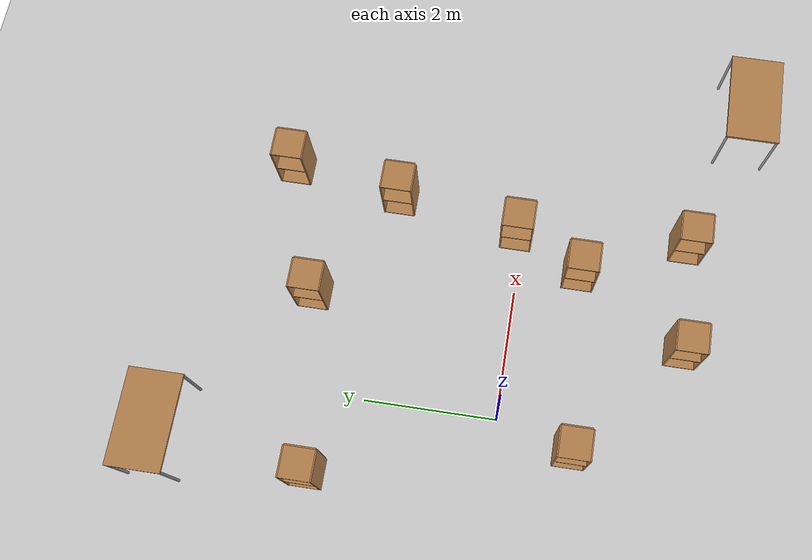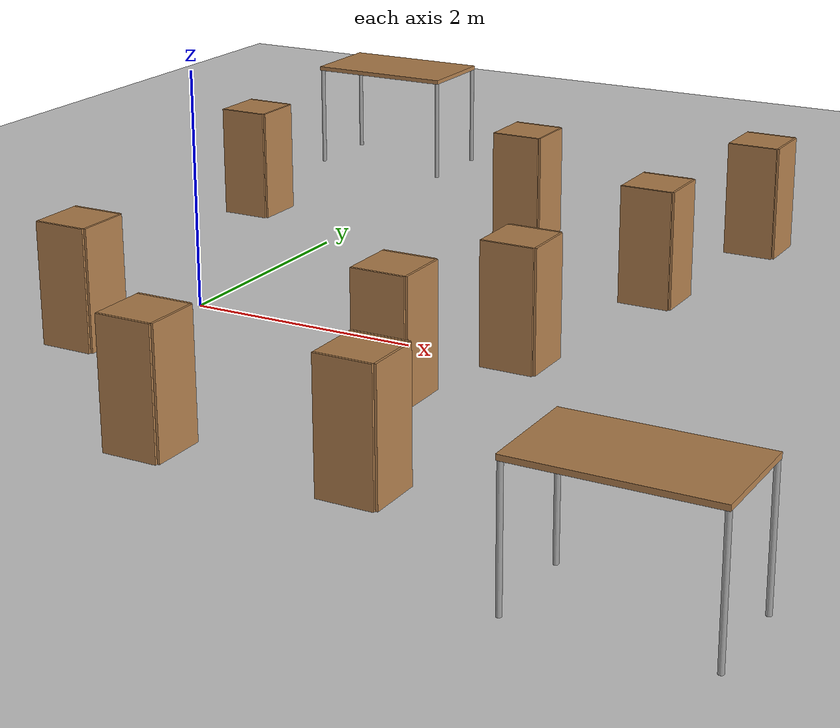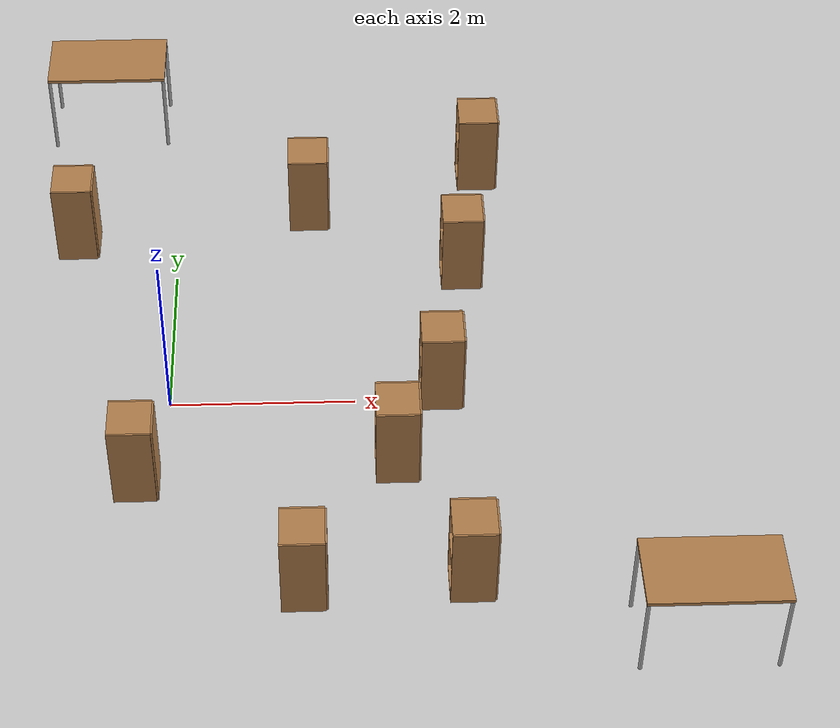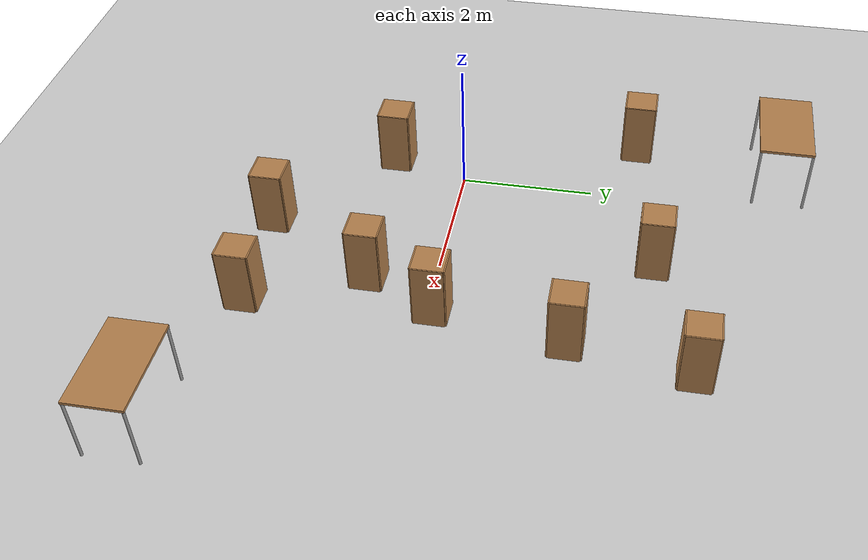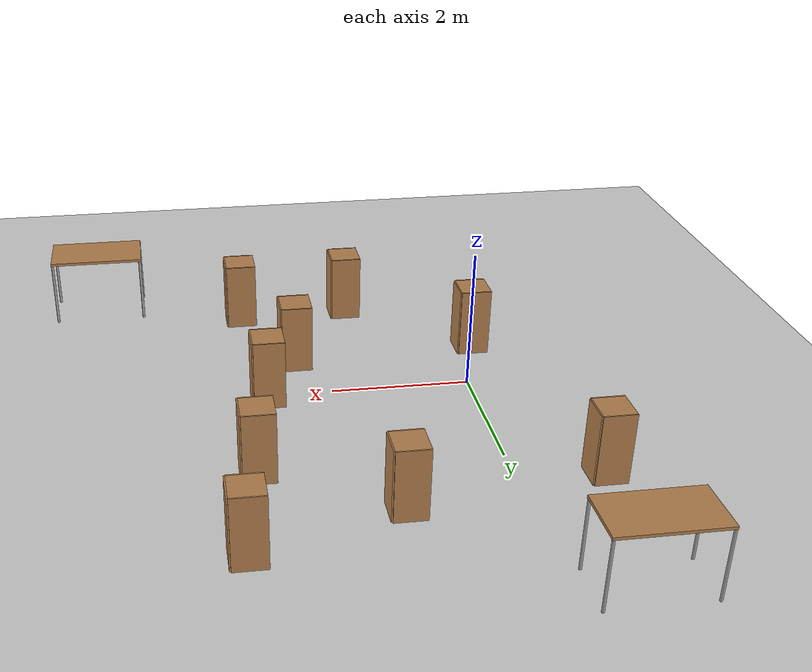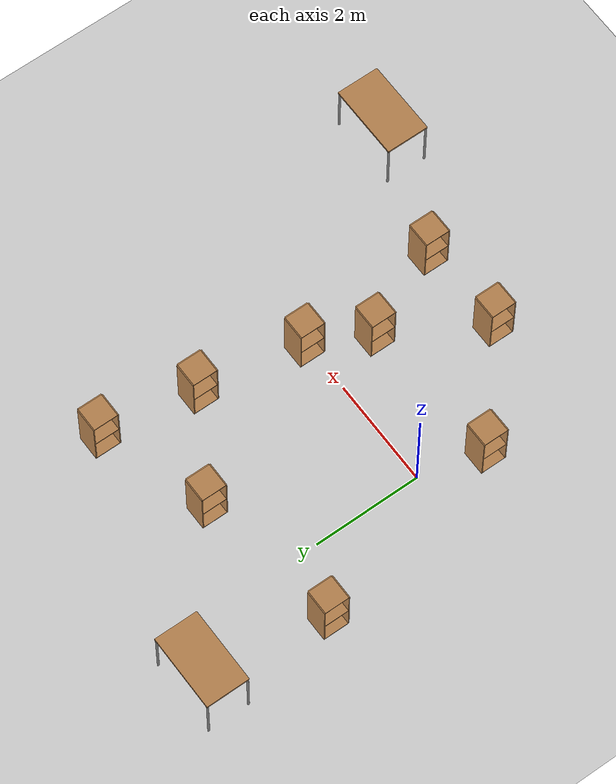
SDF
<sdf version="1.6">
 <world name="default">
  <light name="sun" type="directional">
   <pose>0 0 10 0 -0 0</pose>
   <diffuse>0.8 0.8 0.8 1</diffuse>
   <specular>0.1 0.1 0.1 1</specular>
   <attenuation>
    <range>1000</range>
    <constant>0.9</constant>
    <linear>0.01</linear>
    <quadratic>0.001</quadratic>
   </attenuation>
   <direction>-0.5 0.5 -1</direction>
  </light>
  <model name="ground_plane">
   <static>1</static>
   <link name="link">
    <collision name="collision">
     <geometry><plane><normal>0 0 1</normal><size>100 100</size></plane></geometry>
     <surface><friction><ode><mu>100</mu><mu2>50</mu2></ode></friction></surface>
    </collision>
    <visual name="visual">
     <cast_shadows>0</cast_shadows>
     <geometry><plane><normal>0 0 1</normal><size>100 100</size></plane></geometry>
     <material>
      <script><uri>file://media/materials/scripts/gazebo.material</uri><name>Gazebo/Grey</name></script>
     </material>
    </visual>
   </link>
  </model>
  <gravity>0 0 -9.8</gravity>
  <magnetic_field>6e-06 2.3e-05 -4.2e-05</magnetic_field>
  <atmosphere type="adiabatic"/>
  <physics name="default_physics" default="0" type="ode">
   <max_step_size>0.001</max_step_size>
   <real_time_factor>1</real_time_factor>
   <real_time_update_rate>1000</real_time_update_rate>
  </physics>
  <scene><ambient>0.4 0.4 0.4 1</ambient><background>0.7 0.7 0.7 1</background><shadows>1</shadows></scene>
  <spherical_coordinates>
   <surface_model>EARTH_WGS84</surface_model>
   <latitude_deg>0</latitude_deg>
   <longitude_deg>0</longitude_deg>
   <elevation>0</elevation>
   <heading_deg>0</heading_deg>
  </spherical_coordinates>
  <model name="cabinet">
   <static>1</static>
   <link name="cabinet_bottom_plate">
    <inertial>
     <pose>0 0 -1 0 -0 0</pose>
     <inertia><ixx>2.05</ixx><ixy>0</ixy><ixz>0</ixz><iyy>2.05</iyy><iyz>0</iyz><izz>2.05</izz></inertia>
     <mass>25</mass>
    </inertial>
    <collision name="cabinet_bottom_plate_geom">
     <pose>0 0 0.01 0 -0 0</pose>
     <geometry><box><size>0.45 0.45 0.02</size></box></geometry>
    </collision>
    <visual name="cabinet_bottom_plate_geom_visual">
     <pose>0 0 0.01 0 -0 0</pose>
     <geometry><box><size>0.45 0.45 0.02</size></box></geometry>
     <material>
      <script><uri>file://media/materials/scripts/gazebo.material</uri><name>Gazebo/Wood</name></script>
     </material>
    </visual>
    <collision name="cabinet_bottom_plate_geom_cabinet_back_plate">
     <pose>0.235 0 0.51 0 -0 0</pose>
     <geometry><box><size>0.02 0.45 1.02</size></box></geometry>
    </collision>
    <visual name="cabinet_bottom_plate_geom_cabinet_back_plate_visual">
     <pose>0.235 0 0.51 0 -0 0</pose>
     <geometry><box><size>0.02 0.45 1.02</size></box></geometry>
     <material>
      <script><uri>file://media/materials/scripts/gazebo.material</uri><name>Gazebo/Wood</name></script>
     </material>
    </visual>
    <collision name="cabinet_bottom_plate_geom_cabinet_left_plate">
     <pose>0 0.235 0.51 0 -0 0</pose>
     <geometry><box><size>0.45 0.02 1.02</size></box></geometry>
    </collision>
    <visual name="cabinet_bottom_plate_geom_cabinet_left_plate_visual">
     <pose>0 0.235 0.51 0 -0 0</pose>
     <geometry><box><size>0.45 0.02 1.02</size></box></geometry>
     <material>
      <script><uri>file://media/materials/scripts/gazebo.material</uri><name>Gazebo/Wood</name></script>
     </material>
    </visual>
    <collision name="cabinet_bottom_plate_geom_cabinet_middle_plate">
     <pose>0 0 0.51 0 -0 0</pose>
     <geometry><box><size>0.45 0.45 0.02</size></box></geometry>
    </collision>
    <visual name="cabinet_bottom_plate_geom_cabinet_middle_plate_visual">
     <pose>0 0 0.51 0 -0 0</pose>
     <geometry><box><size>0.45 0.45 0.02</size></box></geometry>
     <material>
      <script><uri>file://media/materials/scripts/gazebo.material</uri><name>Gazebo/Wood</name></script>
     </material>
    </visual>
    <collision name="cabinet_bottom_plate_geom_cabinet_right_plate">
     <pose>0 -0.235 0.51 0 -0 0</pose>
     <geometry><box><size>0.45 0.02 1.02</size></box></geometry>
    </collision>
    <visual name="cabinet_bottom_plate_geom_cabinet_right_plate_visual">
     <pose>0 -0.235 0.51 0 -0 0</pose>
     <geometry><box><size>0.45 0.02 1.02</size></box></geometry>
     <material>
      <script><uri>file://media/materials/scripts/gazebo.material</uri><name>Gazebo/Wood</name></script>
     </material>
    </visual>
    <collision name="cabinet_bottom_plate_geom_cabinet_top_plate">
     <pose>0 0 1.01 0 -0 0</pose>
     <geometry><box><size>0.45 0.45 0.02</size></box></geometry>
    </collision>
    <visual name="cabinet_bottom_plate_geom_cabinet_top_plate_visual">
     <pose>0 0 1.01 0 -0 0</pose>
     <geometry><box><size>0.45 0.45 0.02</size></box></geometry>
     <material>
      <script><uri>file://media/materials/scripts/gazebo.material</uri><name>Gazebo/Wood</name></script>
     </material>
    </visual>
   </link>
   <pose>2.93494 0.095994 0 0 -0 0</pose>
  </model>
  <model name="cabinet_clone">
   <static>1</static>
   <link name="cabinet_bottom_plate">
    <inertial>
     <pose>0 0 -1 0 -0 0</pose>
     <inertia><ixx>2.05</ixx><ixy>0</ixy><ixz>0</ixz><iyy>2.05</iyy><iyz>0</iyz><izz>2.05</izz></inertia>
     <mass>25</mass>
    </inertial>
    <collision name="cabinet_bottom_plate_geom">
     <pose>0 0 0.01 0 -0 0</pose>
     <geometry><box><size>0.45 0.45 0.02</size></box></geometry>
    </collision>
    <visual name="cabinet_bottom_plate_geom_visual">
     <pose>0 0 0.01 0 -0 0</pose>
     <geometry><box><size>0.45 0.45 0.02</size></box></geometry>
     <material>
      <script><uri>file://media/materials/scripts/gazebo.material</uri><name>Gazebo/Wood</name></script>
     </material>
    </visual>
    <collision name="cabinet_bottom_plate_geom_cabinet_back_plate">
     <pose>0.235 0 0.51 0 -0 0</pose>
     <geometry><box><size>0.02 0.45 1.02</size></box></geometry>
    </collision>
    <visual name="cabinet_bottom_plate_geom_cabinet_back_plate_visual">
     <pose>0.235 0 0.51 0 -0 0</pose>
     <geometry><box><size>0.02 0.45 1.02</size></box></geometry>
     <material>
      <script><uri>file://media/materials/scripts/gazebo.material</uri><name>Gazebo/Wood</name></script>
     </material>
    </visual>
    <collision name="cabinet_bottom_plate_geom_cabinet_left_plate">
     <pose>0 0.235 0.51 0 -0 0</pose>
     <geometry><box><size>0.45 0.02 1.02</size></box></geometry>
    </collision>
    <visual name="cabinet_bottom_plate_geom_cabinet_left_plate_visual">
     <pose>0 0.235 0.51 0 -0 0</pose>
     <geometry><box><size>0.45 0.02 1.02</size></box></geometry>
     <material>
      <script><uri>file://media/materials/scripts/gazebo.material</uri><name>Gazebo/Wood</name></script>
     </material>
    </visual>
    <collision name="cabinet_bottom_plate_geom_cabinet_middle_plate">
     <pose>0 0 0.51 0 -0 0</pose>
     <geometry><box><size>0.45 0.45 0.02</size></box></geometry>
    </collision>
    <visual name="cabinet_bottom_plate_geom_cabinet_middle_plate_visual">
     <pose>0 0 0.51 0 -0 0</pose>
     <geometry><box><size>0.45 0.45 0.02</size></box></geometry>
     <material>
      <script><uri>file://media/materials/scripts/gazebo.material</uri><name>Gazebo/Wood</name></script>
     </material>
    </visual>
    <collision name="cabinet_bottom_plate_geom_cabinet_right_plate">
     <pose>0 -0.235 0.51 0 -0 0</pose>
     <geometry><box><size>0.45 0.02 1.02</size></box></geometry>
    </collision>
    <visual name="cabinet_bottom_plate_geom_cabinet_right_plate_visual">
     <pose>0 -0.235 0.51 0 -0 0</pose>
     <geometry><box><size>0.45 0.02 1.02</size></box></geometry>
     <material>
      <script><uri>file://media/materials/scripts/gazebo.material</uri><name>Gazebo/Wood</name></script>
     </material>
    </visual>
    <collision name="cabinet_bottom_plate_geom_cabinet_top_plate">
     <pose>0 0 1.01 0 -0 0</pose>
     <geometry><box><size>0.45 0.45 0.02</size></box></geometry>
    </collision>
    <visual name="cabinet_bottom_plate_geom_cabinet_top_plate_visual">
     <pose>0 0 1.01 0 -0 0</pose>
     <geometry><box><size>0.45 0.45 0.02</size></box></geometry>
     <material>
      <script><uri>file://media/materials/scripts/gazebo.material</uri><name>Gazebo/Wood</name></script>
     </material>
    </visual>
   </link>
   <pose>1.52562 3.04668 0 0 -0 0</pose>
  </model>
  <model name="cabinet_clone_0">
   <static>1</static>
   <link name="cabinet_bottom_plate">
    <inertial>
     <pose>0 0 -1 0 -0 0</pose>
     <inertia><ixx>2.05</ixx><ixy>0</ixy><ixz>0</ixz><iyy>2.05</iyy><iyz>0</iyz><izz>2.05</izz></inertia>
     <mass>25</mass>
    </inertial>
    <collision name="cabinet_bottom_plate_geom">
     <pose>0 0 0.01 0 -0 0</pose>
     <geometry><box><size>0.45 0.45 0.02</size></box></geometry>
    </collision>
    <visual name="cabinet_bottom_plate_geom_visual">
     <pose>0 0 0.01 0 -0 0</pose>
     <geometry><box><size>0.45 0.45 0.02</size></box></geometry>
     <material>
      <script><uri>file://media/materials/scripts/gazebo.material</uri><name>Gazebo/Wood</name></script>
     </material>
    </visual>
    <collision name="cabinet_bottom_plate_geom_cabinet_back_plate">
     <pose>0.235 0 0.51 0 -0 0</pose>
     <geometry><box><size>0.02 0.45 1.02</size></box></geometry>
    </collision>
    <visual name="cabinet_bottom_plate_geom_cabinet_back_plate_visual">
     <pose>0.235 0 0.51 0 -0 0</pose>
     <geometry><box><size>0.02 0.45 1.02</size></box></geometry>
     <material>
      <script><uri>file://media/materials/scripts/gazebo.material</uri><name>Gazebo/Wood</name></script>
     </material>
    </visual>
    <collision name="cabinet_bottom_plate_geom_cabinet_left_plate">
     <pose>0 0.235 0.51 0 -0 0</pose>
     <geometry><box><size>0.45 0.02 1.02</size></box></geometry>
    </collision>
    <visual name="cabinet_bottom_plate_geom_cabinet_left_plate_visual">
     <pose>0 0.235 0.51 0 -0 0</pose>
     <geometry><box><size>0.45 0.02 1.02</size></box></geometry>
     <material>
      <script><uri>file://media/materials/scripts/gazebo.material</uri><name>Gazebo/Wood</name></script>
     </material>
    </visual>
    <collision name="cabinet_bottom_plate_geom_cabinet_middle_plate">
     <pose>0 0 0.51 0 -0 0</pose>
     <geometry><box><size>0.45 0.45 0.02</size></box></geometry>
    </collision>
    <visual name="cabinet_bottom_plate_geom_cabinet_middle_plate_visual">
     <pose>0 0 0.51 0 -0 0</pose>
     <geometry><box><size>0.45 0.45 0.02</size></box></geometry>
     <material>
      <script><uri>file://media/materials/scripts/gazebo.material</uri><name>Gazebo/Wood</name></script>
     </material>
    </visual>
    <collision name="cabinet_bottom_plate_geom_cabinet_right_plate">
     <pose>0 -0.235 0.51 0 -0 0</pose>
     <geometry><box><size>0.45 0.02 1.02</size></box></geometry>
    </collision>
    <visual name="cabinet_bottom_plate_geom_cabinet_right_plate_visual">
     <pose>0 -0.235 0.51 0 -0 0</pose>
     <geometry><box><size>0.45 0.02 1.02</size></box></geometry>
     <material>
      <script><uri>file://media/materials/scripts/gazebo.material</uri><name>Gazebo/Wood</name></script>
     </material>
    </visual>
    <collision name="cabinet_bottom_plate_geom_cabinet_top_plate">
     <pose>0 0 1.01 0 -0 0</pose>
     <geometry><box><size>0.45 0.45 0.02</size></box></geometry>
    </collision>
    <visual name="cabinet_bottom_plate_geom_cabinet_top_plate_visual">
     <pose>0 0 1.01 0 -0 0</pose>
     <geometry><box><size>0.45 0.45 0.02</size></box></geometry>
     <material>
      <script><uri>file://media/materials/scripts/gazebo.material</uri><name>Gazebo/Wood</name></script>
     </material>
    </visual>
   </link>
   <pose>3.25827 1.98576 0 0 -0 0</pose>
  </model>
  <model name="cabinet_clone_1">
   <static>1</static>
   <link name="cabinet_bottom_plate">
    <inertial>
     <pose>0 0 -1 0 -0 0</pose>
     <inertia><ixx>2.05</ixx><ixy>0</ixy><ixz>0</ixz><iyy>2.05</iyy><iyz>0</iyz><izz>2.05</izz></inertia>
     <mass>25</mass>
    </inertial>
    <collision name="cabinet_bottom_plate_geom">
     <pose>0 0 0.01 0 -0 0</pose>
     <geometry><box><size>0.45 0.45 0.02</size></box></geometry>
    </collision>
    <visual name="cabinet_bottom_plate_geom_visual">
     <pose>0 0 0.01 0 -0 0</pose>
     <geometry><box><size>0.45 0.45 0.02</size></box></geometry>
     <material>
      <script><uri>file://media/materials/scripts/gazebo.material</uri><name>Gazebo/Wood</name></script>
     </material>
    </visual>
    <collision name="cabinet_bottom_plate_geom_cabinet_back_plate">
     <pose>0.235 0 0.51 0 -0 0</pose>
     <geometry><box><size>0.02 0.45 1.02</size></box></geometry>
    </collision>
    <visual name="cabinet_bottom_plate_geom_cabinet_back_plate_visual">
     <pose>0.235 0 0.51 0 -0 0</pose>
     <geometry><box><size>0.02 0.45 1.02</size></box></geometry>
     <material>
      <script><uri>file://media/materials/scripts/gazebo.material</uri><name>Gazebo/Wood</name></script>
     </material>
    </visual>
    <collision name="cabinet_bottom_plate_geom_cabinet_left_plate">
     <pose>0 0.235 0.51 0 -0 0</pose>
     <geometry><box><size>0.45 0.02 1.02</size></box></geometry>
    </collision>
    <visual name="cabinet_bottom_plate_geom_cabinet_left_plate_visual">
     <pose>0 0.235 0.51 0 -0 0</pose>
     <geometry><box><size>0.45 0.02 1.02</size></box></geometry>
     <material>
      <script><uri>file://media/materials/scripts/gazebo.material</uri><name>Gazebo/Wood</name></script>
     </material>
    </visual>
    <collision name="cabinet_bottom_plate_geom_cabinet_middle_plate">
     <pose>0 0 0.51 0 -0 0</pose>
     <geometry><box><size>0.45 0.45 0.02</size></box></geometry>
    </collision>
    <visual name="cabinet_bottom_plate_geom_cabinet_middle_plate_visual">
     <pose>0 0 0.51 0 -0 0</pose>
     <geometry><box><size>0.45 0.45 0.02</size></box></geometry>
     <material>
      <script><uri>file://media/materials/scripts/gazebo.material</uri><name>Gazebo/Wood</name></script>
     </material>
    </visual>
    <collision name="cabinet_bottom_plate_geom_cabinet_right_plate">
     <pose>0 -0.235 0.51 0 -0 0</pose>
     <geometry><box><size>0.45 0.02 1.02</size></box></geometry>
    </collision>
    <visual name="cabinet_bottom_plate_geom_cabinet_right_plate_visual">
     <pose>0 -0.235 0.51 0 -0 0</pose>
     <geometry><box><size>0.45 0.02 1.02</size></box></geometry>
     <material>
      <script><uri>file://media/materials/scripts/gazebo.material</uri><name>Gazebo/Wood</name></script>
     </material>
    </visual>
    <collision name="cabinet_bottom_plate_geom_cabinet_top_plate">
     <pose>0 0 1.01 0 -0 0</pose>
     <geometry><box><size>0.45 0.45 0.02</size></box></geometry>
    </collision>
    <visual name="cabinet_bottom_plate_geom_cabinet_top_plate_visual">
     <pose>0 0 1.01 0 -0 0</pose>
     <geometry><box><size>0.45 0.45 0.02</size></box></geometry>
     <material>
      <script><uri>file://media/materials/scripts/gazebo.material</uri><name>Gazebo/Wood</name></script>
     </material>
    </visual>
   </link>
   <pose>3.53839 3.7203 0 0 -0 0</pose>
  </model>
  <model name="cabinet_clone_2">
   <static>1</static>
   <link name="cabinet_bottom_plate">
    <inertial>
     <pose>0 0 -1 0 -0 0</pose>
     <inertia><ixx>2.05</ixx><ixy>0</ixy><ixz>0</ixz><iyy>2.05</iyy><iyz>0</iyz><izz>2.05</izz></inertia>
     <mass>25</mass>
    </inertial>
    <collision name="cabinet_bottom_plate_geom">
     <pose>0 0 0.01 0 -0 0</pose>
     <geometry><box><size>0.45 0.45 0.02</size></box></geometry>
    </collision>
    <visual name="cabinet_bottom_plate_geom_visual">
     <pose>0 0 0.01 0 -0 0</pose>
     <geometry><box><size>0.45 0.45 0.02</size></box></geometry>
     <material>
      <script><uri>file://media/materials/scripts/gazebo.material</uri><name>Gazebo/Wood</name></script>
     </material>
    </visual>
    <collision name="cabinet_bottom_plate_geom_cabinet_back_plate">
     <pose>0.235 0 0.51 0 -0 0</pose>
     <geometry><box><size>0.02 0.45 1.02</size></box></geometry>
    </collision>
    <visual name="cabinet_bottom_plate_geom_cabinet_back_plate_visual">
     <pose>0.235 0 0.51 0 -0 0</pose>
     <geometry><box><size>0.02 0.45 1.02</size></box></geometry>
     <material>
      <script><uri>file://media/materials/scripts/gazebo.material</uri><name>Gazebo/Wood</name></script>
     </material>
    </visual>
    <collision name="cabinet_bottom_plate_geom_cabinet_left_plate">
     <pose>0 0.235 0.51 0 -0 0</pose>
     <geometry><box><size>0.45 0.02 1.02</size></box></geometry>
    </collision>
    <visual name="cabinet_bottom_plate_geom_cabinet_left_plate_visual">
     <pose>0 0.235 0.51 0 -0 0</pose>
     <geometry><box><size>0.45 0.02 1.02</size></box></geometry>
     <material>
      <script><uri>file://media/materials/scripts/gazebo.material</uri><name>Gazebo/Wood</name></script>
     </material>
    </visual>
    <collision name="cabinet_bottom_plate_geom_cabinet_middle_plate">
     <pose>0 0 0.51 0 -0 0</pose>
     <geometry><box><size>0.45 0.45 0.02</size></box></geometry>
    </collision>
    <visual name="cabinet_bottom_plate_geom_cabinet_middle_plate_visual">
     <pose>0 0 0.51 0 -0 0</pose>
     <geometry><box><size>0.45 0.45 0.02</size></box></geometry>
     <material>
      <script><uri>file://media/materials/scripts/gazebo.material</uri><name>Gazebo/Wood</name></script>
     </material>
    </visual>
    <collision name="cabinet_bottom_plate_geom_cabinet_right_plate">
     <pose>0 -0.235 0.51 0 -0 0</pose>
     <geometry><box><size>0.45 0.02 1.02</size></box></geometry>
    </collision>
    <visual name="cabinet_bottom_plate_geom_cabinet_right_plate_visual">
     <pose>0 -0.235 0.51 0 -0 0</pose>
     <geometry><box><size>0.45 0.02 1.02</size></box></geometry>
     <material>
      <script><uri>file://media/materials/scripts/gazebo.material</uri><name>Gazebo/Wood</name></script>
     </material>
    </visual>
    <collision name="cabinet_bottom_plate_geom_cabinet_top_plate">
     <pose>0 0 1.01 0 -0 0</pose>
     <geometry><box><size>0.45 0.45 0.02</size></box></geometry>
    </collision>
    <visual name="cabinet_bottom_plate_geom_cabinet_top_plate_visual">
     <pose>0 0 1.01 0 -0 0</pose>
     <geometry><box><size>0.45 0.45 0.02</size></box></geometry>
     <material>
      <script><uri>file://media/materials/scripts/gazebo.material</uri><name>Gazebo/Wood</name></script>
     </material>
    </visual>
   </link>
   <pose>2.42007 -0.941145 0 0 -0 0</pose>
  </model>
  <model name="cabinet_clone_3">
   <static>1</static>
   <link name="cabinet_bottom_plate">
    <inertial>
     <pose>0 0 -1 0 -0 0</pose>
     <inertia><ixx>2.05</ixx><ixy>0</ixy><ixz>0</ixz><iyy>2.05</iyy><iyz>0</iyz><izz>2.05</izz></inertia>
     <mass>25</mass>
    </inertial>
    <collision name="cabinet_bottom_plate_geom">
     <pose>0 0 0.01 0 -0 0</pose>
     <geometry><box><size>0.45 0.45 0.02</size></box></geometry>
    </collision>
    <visual name="cabinet_bottom_plate_geom_visual">
     <pose>0 0 0.01 0 -0 0</pose>
     <geometry><box><size>0.45 0.45 0.02</size></box></geometry>
     <material>
      <script><uri>file://media/materials/scripts/gazebo.material</uri><name>Gazebo/Wood</name></script>
     </material>
    </visual>
    <collision name="cabinet_bottom_plate_geom_cabinet_back_plate">
     <pose>0.235 0 0.51 0 -0 0</pose>
     <geometry><box><size>0.02 0.45 1.02</size></box></geometry>
    </collision>
    <visual name="cabinet_bottom_plate_geom_cabinet_back_plate_visual">
     <pose>0.235 0 0.51 0 -0 0</pose>
     <geometry><box><size>0.02 0.45 1.02</size></box></geometry>
     <material>
      <script><uri>file://media/materials/scripts/gazebo.material</uri><name>Gazebo/Wood</name></script>
     </material>
    </visual>
    <collision name="cabinet_bottom_plate_geom_cabinet_left_plate">
     <pose>0 0.235 0.51 0 -0 0</pose>
     <geometry><box><size>0.45 0.02 1.02</size></box></geometry>
    </collision>
    <visual name="cabinet_bottom_plate_geom_cabinet_left_plate_visual">
     <pose>0 0.235 0.51 0 -0 0</pose>
     <geometry><box><size>0.45 0.02 1.02</size></box></geometry>
     <material>
      <script><uri>file://media/materials/scripts/gazebo.material</uri><name>Gazebo/Wood</name></script>
     </material>
    </visual>
    <collision name="cabinet_bottom_plate_geom_cabinet_middle_plate">
     <pose>0 0 0.51 0 -0 0</pose>
     <geometry><box><size>0.45 0.45 0.02</size></box></geometry>
    </collision>
    <visual name="cabinet_bottom_plate_geom_cabinet_middle_plate_visual">
     <pose>0 0 0.51 0 -0 0</pose>
     <geometry><box><size>0.45 0.45 0.02</size></box></geometry>
     <material>
      <script><uri>file://media/materials/scripts/gazebo.material</uri><name>Gazebo/Wood</name></script>
     </material>
    </visual>
    <collision name="cabinet_bottom_plate_geom_cabinet_right_plate">
     <pose>0 -0.235 0.51 0 -0 0</pose>
     <geometry><box><size>0.45 0.02 1.02</size></box></geometry>
    </collision>
    <visual name="cabinet_bottom_plate_geom_cabinet_right_plate_visual">
     <pose>0 -0.235 0.51 0 -0 0</pose>
     <geometry><box><size>0.45 0.02 1.02</size></box></geometry>
     <material>
      <script><uri>file://media/materials/scripts/gazebo.material</uri><name>Gazebo/Wood</name></script>
     </material>
    </visual>
    <collision name="cabinet_bottom_plate_geom_cabinet_top_plate">
     <pose>0 0 1.01 0 -0 0</pose>
     <geometry><box><size>0.45 0.45 0.02</size></box></geometry>
    </collision>
    <visual name="cabinet_bottom_plate_geom_cabinet_top_plate_visual">
     <pose>0 0 1.01 0 -0 0</pose>
     <geometry><box><size>0.45 0.45 0.02</size></box></geometry>
     <material>
      <script><uri>file://media/materials/scripts/gazebo.material</uri><name>Gazebo/Wood</name></script>
     </material>
    </visual>
   </link>
   <pose>-1.16378 2.62513 0 0 -0 0</pose>
  </model>
  <model name="cabinet_clone_4">
   <static>1</static>
   <link name="cabinet_bottom_plate">
    <inertial>
     <pose>0 0 -1 0 -0 0</pose>
     <inertia><ixx>2.05</ixx><ixy>0</ixy><ixz>0</ixz><iyy>2.05</iyy><iyz>0</iyz><izz>2.05</izz></inertia>
     <mass>25</mass>
    </inertial>
    <collision name="cabinet_bottom_plate_geom">
     <pose>0 0 0.01 0 -0 0</pose>
     <geometry><box><size>0.45 0.45 0.02</size></box></geometry>
    </collision>
    <visual name="cabinet_bottom_plate_geom_visual">
     <pose>0 0 0.01 0 -0 0</pose>
     <geometry><box><size>0.45 0.45 0.02</size></box></geometry>
     <material>
      <script><uri>file://media/materials/scripts/gazebo.material</uri><name>Gazebo/Wood</name></script>
     </material>
    </visual>
    <collision name="cabinet_bottom_plate_geom_cabinet_back_plate">
     <pose>0.235 0 0.51 0 -0 0</pose>
     <geometry><box><size>0.02 0.45 1.02</size></box></geometry>
    </collision>
    <visual name="cabinet_bottom_plate_geom_cabinet_back_plate_visual">
     <pose>0.235 0 0.51 0 -0 0</pose>
     <geometry><box><size>0.02 0.45 1.02</size></box></geometry>
     <material>
      <script><uri>file://media/materials/scripts/gazebo.material</uri><name>Gazebo/Wood</name></script>
     </material>
    </visual>
    <collision name="cabinet_bottom_plate_geom_cabinet_left_plate">
     <pose>0 0.235 0.51 0 -0 0</pose>
     <geometry><box><size>0.45 0.02 1.02</size></box></geometry>
    </collision>
    <visual name="cabinet_bottom_plate_geom_cabinet_left_plate_visual">
     <pose>0 0.235 0.51 0 -0 0</pose>
     <geometry><box><size>0.45 0.02 1.02</size></box></geometry>
     <material>
      <script><uri>file://media/materials/scripts/gazebo.material</uri><name>Gazebo/Wood</name></script>
     </material>
    </visual>
    <collision name="cabinet_bottom_plate_geom_cabinet_middle_plate">
     <pose>0 0 0.51 0 -0 0</pose>
     <geometry><box><size>0.45 0.45 0.02</size></box></geometry>
    </collision>
    <visual name="cabinet_bottom_plate_geom_cabinet_middle_plate_visual">
     <pose>0 0 0.51 0 -0 0</pose>
     <geometry><box><size>0.45 0.45 0.02</size></box></geometry>
     <material>
      <script><uri>file://media/materials/scripts/gazebo.material</uri><name>Gazebo/Wood</name></script>
     </material>
    </visual>
    <collision name="cabinet_bottom_plate_geom_cabinet_right_plate">
     <pose>0 -0.235 0.51 0 -0 0</pose>
     <geometry><box><size>0.45 0.02 1.02</size></box></geometry>
    </collision>
    <visual name="cabinet_bottom_plate_geom_cabinet_right_plate_visual">
     <pose>0 -0.235 0.51 0 -0 0</pose>
     <geometry><box><size>0.45 0.02 1.02</size></box></geometry>
     <material>
      <script><uri>file://media/materials/scripts/gazebo.material</uri><name>Gazebo/Wood</name></script>
     </material>
    </visual>
    <collision name="cabinet_bottom_plate_geom_cabinet_top_plate">
     <pose>0 0 1.01 0 -0 0</pose>
     <geometry><box><size>0.45 0.45 0.02</size></box></geometry>
    </collision>
    <visual name="cabinet_bottom_plate_geom_cabinet_top_plate_visual">
     <pose>0 0 1.01 0 -0 0</pose>
     <geometry><box><size>0.45 0.45 0.02</size></box></geometry>
     <material>
      <script><uri>file://media/materials/scripts/gazebo.material</uri><name>Gazebo/Wood</name></script>
     </material>
    </visual>
   </link>
   <pose>-0.316055 -1.12471 0 0 -0 0</pose>
  </model>
  <model name="cabinet_clone_5">
   <static>1</static>
   <link name="cabinet_bottom_plate">
    <inertial>
     <pose>0 0 -1 0 -0 0</pose>
     <inertia><ixx>2.05</ixx><ixy>0</ixy><ixz>0</ixz><iyy>2.05</iyy><iyz>0</iyz><izz>2.05</izz></inertia>
     <mass>25</mass>
    </inertial>
    <collision name="cabinet_bottom_plate_geom">
     <pose>0 0 0.01 0 -0 0</pose>
     <geometry><box><size>0.45 0.45 0.02</size></box></geometry>
    </collision>
    <visual name="cabinet_bottom_plate_geom_visual">
     <pose>0 0 0.01 0 -0 0</pose>
     <geometry><box><size>0.45 0.45 0.02</size></box></geometry>
     <material>
      <script><uri>file://media/materials/scripts/gazebo.material</uri><name>Gazebo/Wood</name></script>
     </material>
    </visual>
    <collision name="cabinet_bottom_plate_geom_cabinet_back_plate">
     <pose>0.235 0 0.51 0 -0 0</pose>
     <geometry><box><size>0.02 0.45 1.02</size></box></geometry>
    </collision>
    <visual name="cabinet_bottom_plate_geom_cabinet_back_plate_visual">
     <pose>0.235 0 0.51 0 -0 0</pose>
     <geometry><box><size>0.02 0.45 1.02</size></box></geometry>
     <material>
      <script><uri>file://media/materials/scripts/gazebo.material</uri><name>Gazebo/Wood</name></script>
     </material>
    </visual>
    <collision name="cabinet_bottom_plate_geom_cabinet_left_plate">
     <pose>0 0.235 0.51 0 -0 0</pose>
     <geometry><box><size>0.45 0.02 1.02</size></box></geometry>
    </collision>
    <visual name="cabinet_bottom_plate_geom_cabinet_left_plate_visual">
     <pose>0 0.235 0.51 0 -0 0</pose>
     <geometry><box><size>0.45 0.02 1.02</size></box></geometry>
     <material>
      <script><uri>file://media/materials/scripts/gazebo.material</uri><name>Gazebo/Wood</name></script>
     </material>
    </visual>
    <collision name="cabinet_bottom_plate_geom_cabinet_middle_plate">
     <pose>0 0 0.51 0 -0 0</pose>
     <geometry><box><size>0.45 0.45 0.02</size></box></geometry>
    </collision>
    <visual name="cabinet_bottom_plate_geom_cabinet_middle_plate_visual">
     <pose>0 0 0.51 0 -0 0</pose>
     <geometry><box><size>0.45 0.45 0.02</size></box></geometry>
     <material>
      <script><uri>file://media/materials/scripts/gazebo.material</uri><name>Gazebo/Wood</name></script>
     </material>
    </visual>
    <collision name="cabinet_bottom_plate_geom_cabinet_right_plate">
     <pose>0 -0.235 0.51 0 -0 0</pose>
     <geometry><box><size>0.45 0.02 1.02</size></box></geometry>
    </collision>
    <visual name="cabinet_bottom_plate_geom_cabinet_right_plate_visual">
     <pose>0 -0.235 0.51 0 -0 0</pose>
     <geometry><box><size>0.45 0.02 1.02</size></box></geometry>
     <material>
      <script><uri>file://media/materials/scripts/gazebo.material</uri><name>Gazebo/Wood</name></script>
     </material>
    </visual>
    <collision name="cabinet_bottom_plate_geom_cabinet_top_plate">
     <pose>0 0 1.01 0 -0 0</pose>
     <geometry><box><size>0.45 0.45 0.02</size></box></geometry>
    </collision>
    <visual name="cabinet_bottom_plate_geom_cabinet_top_plate_visual">
     <pose>0 0 1.01 0 -0 0</pose>
     <geometry><box><size>0.45 0.45 0.02</size></box></geometry>
     <material>
      <script><uri>file://media/materials/scripts/gazebo.material</uri><name>Gazebo/Wood</name></script>
     </material>
    </visual>
   </link>
   <pose>3.1089 -2.54285 0 0 -0 0</pose>
  </model>
  <model name="cabinet_clone_6">
   <static>1</static>
   <link name="cabinet_bottom_plate">
    <inertial>
     <pose>0 0 -1 0 -0 0</pose>
     <inertia><ixx>2.05</ixx><ixy>0</ixy><ixz>0</ixz><iyy>2.05</iyy><iyz>0</iyz><izz>2.05</izz></inertia>
     <mass>25</mass>
    </inertial>
    <collision name="cabinet_bottom_plate_geom">
     <pose>0 0 0.01 0 -0 0</pose>
     <geometry><box><size>0.45 0.45 0.02</size></box></geometry>
    </collision>
    <visual name="cabinet_bottom_plate_geom_visual">
     <pose>0 0 0.01 0 -0 0</pose>
     <geometry><box><size>0.45 0.45 0.02</size></box></geometry>
     <material>
      <script><uri>file://media/materials/scripts/gazebo.material</uri><name>Gazebo/Wood</name></script>
     </material>
    </visual>
    <collision name="cabinet_bottom_plate_geom_cabinet_back_plate">
     <pose>0.235 0 0.51 0 -0 0</pose>
     <geometry><box><size>0.02 0.45 1.02</size></box></geometry>
    </collision>
    <visual name="cabinet_bottom_plate_geom_cabinet_back_plate_visual">
     <pose>0.235 0 0.51 0 -0 0</pose>
     <geometry><box><size>0.02 0.45 1.02</size></box></geometry>
     <material>
      <script><uri>file://media/materials/scripts/gazebo.material</uri><name>Gazebo/Wood</name></script>
     </material>
    </visual>
    <collision name="cabinet_bottom_plate_geom_cabinet_left_plate">
     <pose>0 0.235 0.51 0 -0 0</pose>
     <geometry><box><size>0.45 0.02 1.02</size></box></geometry>
    </collision>
    <visual name="cabinet_bottom_plate_geom_cabinet_left_plate_visual">
     <pose>0 0.235 0.51 0 -0 0</pose>
     <geometry><box><size>0.45 0.02 1.02</size></box></geometry>
     <material>
      <script><uri>file://media/materials/scripts/gazebo.material</uri><name>Gazebo/Wood</name></script>
     </material>
    </visual>
    <collision name="cabinet_bottom_plate_geom_cabinet_middle_plate">
     <pose>0 0 0.51 0 -0 0</pose>
     <geometry><box><size>0.45 0.45 0.02</size></box></geometry>
    </collision>
    <visual name="cabinet_bottom_plate_geom_cabinet_middle_plate_visual">
     <pose>0 0 0.51 0 -0 0</pose>
     <geometry><box><size>0.45 0.45 0.02</size></box></geometry>
     <material>
      <script><uri>file://media/materials/scripts/gazebo.material</uri><name>Gazebo/Wood</name></script>
     </material>
    </visual>
    <collision name="cabinet_bottom_plate_geom_cabinet_right_plate">
     <pose>0 -0.235 0.51 0 -0 0</pose>
     <geometry><box><size>0.45 0.02 1.02</size></box></geometry>
    </collision>
    <visual name="cabinet_bottom_plate_geom_cabinet_right_plate_visual">
     <pose>0 -0.235 0.51 0 -0 0</pose>
     <geometry><box><size>0.45 0.02 1.02</size></box></geometry>
     <material>
      <script><uri>file://media/materials/scripts/gazebo.material</uri><name>Gazebo/Wood</name></script>
     </material>
    </visual>
    <collision name="cabinet_bottom_plate_geom_cabinet_top_plate">
     <pose>0 0 1.01 0 -0 0</pose>
     <geometry><box><size>0.45 0.45 0.02</size></box></geometry>
    </collision>
    <visual name="cabinet_bottom_plate_geom_cabinet_top_plate_visual">
     <pose>0 0 1.01 0 -0 0</pose>
     <geometry><box><size>0.45 0.45 0.02</size></box></geometry>
     <material>
      <script><uri>file://media/materials/scripts/gazebo.material</uri><name>Gazebo/Wood</name></script>
     </material>
    </visual>
   </link>
   <pose>1.42827 -2.61041 0 0 -0 0</pose>
  </model>
  <model name="table">
   <static>0</static>
   <link name="link">
    <collision name="surface">
     <pose>0 0 1 0 -0 0</pose>
     <geometry><box><size>1.5 0.8 0.03</size></box></geometry>
     <surface><friction><ode><mu>0.6</mu><mu2>0.6</mu2></ode></friction></surface>
    </collision>
    <visual name="visual1">
     <pose>0 0 1 0 -0 0</pose>
     <geometry><box><size>1.4 0.8 0.04</size></box></geometry>
     <material>
      <script><uri>file://media/materials/scripts/gazebo.material</uri><name>Gazebo/Wood</name></script>
     </material>
    </visual>
    <collision name="front_left_leg">
     <pose>0.68 0.38 0.5 0 -0 0</pose>
     <geometry><cylinder><radius>0.02</radius><length>1</length></cylinder></geometry>
    </collision>
    <visual name="front_left_leg">
     <pose>0.68 0.38 0.5 0 -0 0</pose>
     <geometry><cylinder><radius>0.02</radius><length>1</length></cylinder></geometry>
     <material>
      <script><uri>file://media/materials/scripts/gazebo.material</uri><name>Gazebo/Grey</name></script>
     </material>
    </visual>
    <collision name="front_right_leg">
     <pose>0.68 -0.38 0.5 0 -0 0</pose>
     <geometry><cylinder><radius>0.02</radius><length>1</length></cylinder></geometry>
    </collision>
    <visual name="front_right_leg">
     <pose>0.68 -0.38 0.5 0 -0 0</pose>
     <geometry><cylinder><radius>0.02</radius><length>1</length></cylinder></geometry>
     <material>
      <script><uri>file://media/materials/scripts/gazebo.material</uri><name>Gazebo/Grey</name></script>
     </material>
    </visual>
    <collision name="back_right_leg">
     <pose>-0.68 -0.38 0.5 0 -0 0</pose>
     <geometry><cylinder><radius>0.02</radius><length>1</length></cylinder></geometry>
    </collision>
    <visual name="back_right_leg">
     <pose>-0.68 -0.38 0.5 0 -0 0</pose>
     <geometry><cylinder><radius>0.02</radius><length>1</length></cylinder></geometry>
     <material>
      <script><uri>file://media/materials/scripts/gazebo.material</uri><name>Gazebo/Grey</name></script>
     </material>
    </visual>
    <collision name="back_left_leg">
     <pose>-0.68 0.38 0.5 0 -0 0</pose>
     <geometry><cylinder><radius>0.02</radius><length>1</length></cylinder></geometry>
    </collision>
    <visual name="back_left_leg">
     <pose>-0.68 0.38 0.5 0 -0 0</pose>
     <geometry><cylinder><radius>0.02</radius><length>1</length></cylinder></geometry>
     <material>
      <script><uri>file://media/materials/scripts/gazebo.material</uri><name>Gazebo/Grey</name></script>
     </material>
    </visual>
    <inertial>
     <inertia><ixx>1</ixx><ixy>0</ixy><ixz>0</ixz><iyy>1</iyy><iyz>0</iyz><izz>1</izz></inertia>
     <mass>1</mass>
    </inertial>
   </link>
   <pose>-0.881909 4.83969 -8e-06 0 -0 0</pose>
  </model>
  <model name="table_clone">
   <static>0</static>
   <link name="link">
    <collision name="surface">
     <pose>0 0 1 0 -0 0</pose>
     <geometry><box><size>1.5 0.8 0.03</size></box></geometry>
     <surface><friction><ode><mu>0.6</mu><mu2>0.6</mu2></ode></friction></surface>
    </collision>
    <visual name="visual1">
     <pose>0 0 1 0 -0 0</pose>
     <geometry><box><size>1.4 0.8 0.04</size></box></geometry>
     <material>
      <script><uri>file://media/materials/scripts/gazebo.material</uri><name>Gazebo/Wood</name></script>
     </material>
    </visual>
    <collision name="front_left_leg">
     <pose>0.68 0.38 0.5 0 -0 0</pose>
     <geometry><cylinder><radius>0.02</radius><length>1</length></cylinder></geometry>
    </collision>
    <visual name="front_left_leg">
     <pose>0.68 0.38 0.5 0 -0 0</pose>
     <geometry><cylinder><radius>0.02</radius><length>1</length></cylinder></geometry>
     <material>
      <script><uri>file://media/materials/scripts/gazebo.material</uri><name>Gazebo/Grey</name></script>
     </material>
    </visual>
    <collision name="front_right_leg">
     <pose>0.68 -0.38 0.5 0 -0 0</pose>
     <geometry><cylinder><radius>0.02</radius><length>1</length></cylinder></geometry>
    </collision>
    <visual name="front_right_leg">
     <pose>0.68 -0.38 0.5 0 -0 0</pose>
     <geometry><cylinder><radius>0.02</radius><length>1</length></cylinder></geometry>
     <material>
      <script><uri>file://media/materials/scripts/gazebo.material</uri><name>Gazebo/Grey</name></script>
     </material>
    </visual>
    <collision name="back_right_leg">
     <pose>-0.68 -0.38 0.5 0 -0 0</pose>
     <geometry><cylinder><radius>0.02</radius><length>1</length></cylinder></geometry>
    </collision>
    <visual name="back_right_leg">
     <pose>-0.68 -0.38 0.5 0 -0 0</pose>
     <geometry><cylinder><radius>0.02</radius><length>1</length></cylinder></geometry>
     <material>
      <script><uri>file://media/materials/scripts/gazebo.material</uri><name>Gazebo/Grey</name></script>
     </material>
    </visual>
    <collision name="back_left_leg">
     <pose>-0.68 0.38 0.5 0 -0 0</pose>
     <geometry><cylinder><radius>0.02</radius><length>1</length></cylinder></geometry>
    </collision>
    <visual name="back_left_leg">
     <pose>-0.68 0.38 0.5 0 -0 0</pose>
     <geometry><cylinder><radius>0.02</radius><length>1</length></cylinder></geometry>
     <material>
      <script><uri>file://media/materials/scripts/gazebo.material</uri><name>Gazebo/Grey</name></script>
     </material>
    </visual>
    <inertial>
     <inertia><ixx>1</ixx><ixy>0</ixy><ixz>0</ixz><iyy>1</iyy><iyz>0</iyz><izz>1</izz></inertia>
     <mass>1</mass>
    </inertial>
   </link>
   <pose>5.35307 -3.25771 -2e-06 0 -0 0</pose>
  </model>
 </world>
</sdf>
